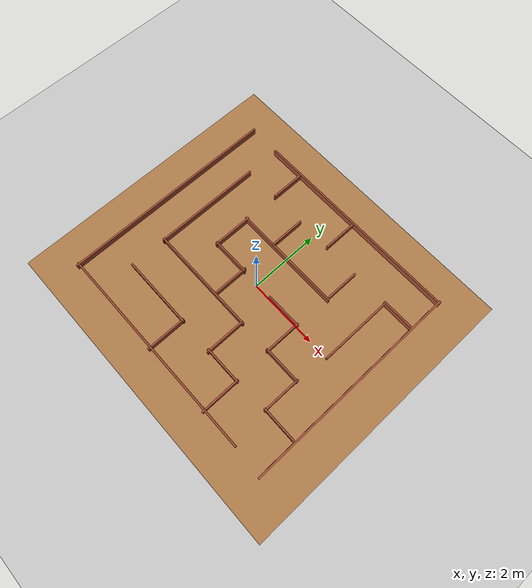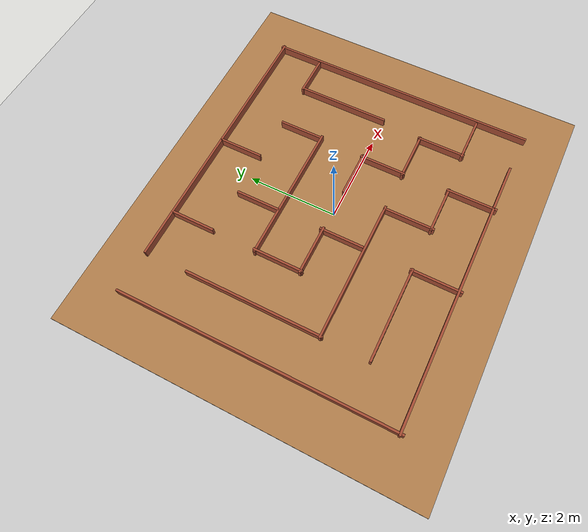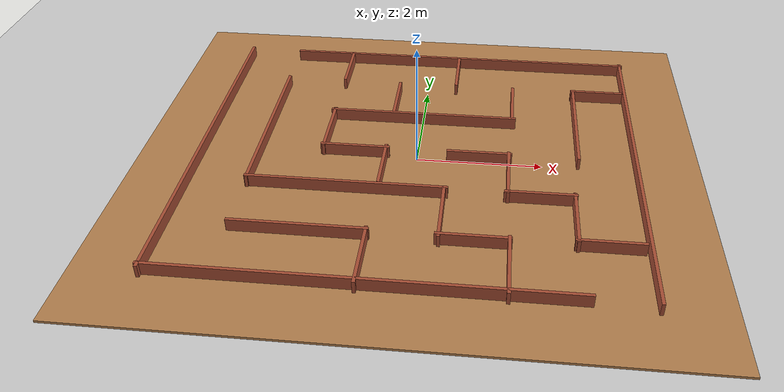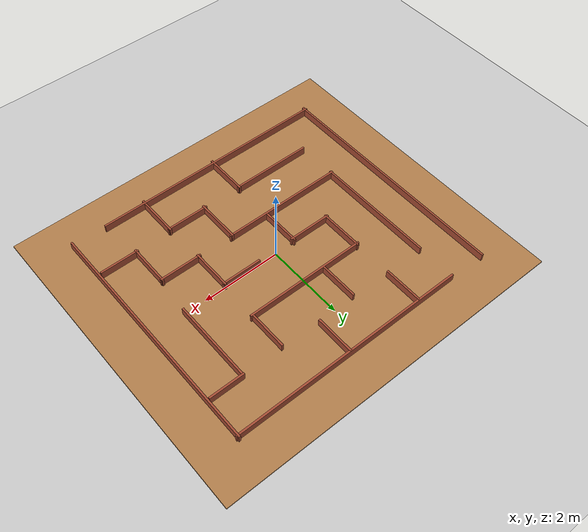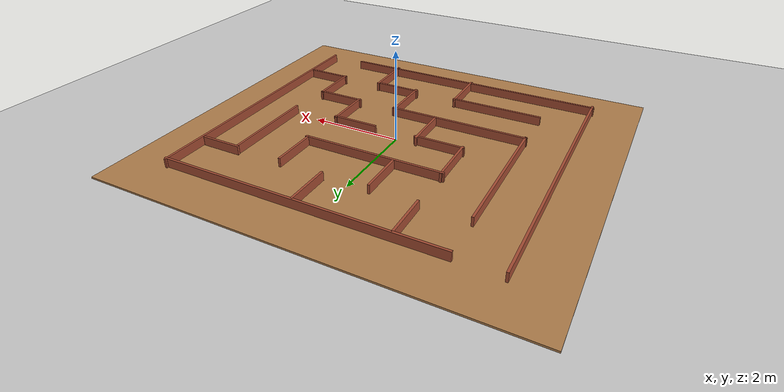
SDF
<sdf version="1.4">
  <world name="default">

    <scene>
      <ambient>0.4 0.4 0.4 1</ambient>
      <background>0.7 0.7 0.7 1</background>
      <shadows>true</shadows>
    </scene>

    <!-- A global light source -->
    <include>
      <uri>model://sun</uri>
    </include>

    <!-- A ground plane -->
    <include>
      <uri>model://ground_plane</uri>
    </include>

   <!-- A ground plane -->
    <include> -->
      <uri>model://maze1</uri>
      <pose> 0 0 0 0 0 0 </pose>
    </include> -->

    <physics type="ode">
      <real_time_update_rate>1000.0</real_time_update_rate>
      <max_step_size>0.001</max_step_size>
      <real_time_factor>1</real_time_factor>
      <ode>
        <solver>
          <type>quick</type>
          <iters>150</iters>
          <precon_iters>0</precon_iters>
          <sor>1.400000</sor>
          <use_dynamic_moi_rescaling>1</use_dynamic_moi_rescaling>
        </solver>
        <constraints>
          <cfm>0.00001</cfm>
          <erp>0.2</erp>
          <contact_max_correcting_vel>2000.000000</contact_max_correcting_vel>
          <contact_surface_layer>0.01000</contact_surface_layer>
        </constraints>
      </ode>
    </physics>
  </world>

</sdf>

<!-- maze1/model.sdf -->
<sdf version='1.6'>
  <model name='maze1'>
    <pose frame=''>0.314901 -0.175 0 0 -0 0</pose>
    <link name='ground_link'>
      <collision name='ground_collision'>
        <geometry>
          <box>
            <size>9 8 0.05</size>
          </box>
        </geometry>
        <surface>
          <friction>
            <ode>
              <mu>100</mu>
              <mu2>50</mu2>
            </ode>
          </friction>
        </surface>
      </collision>
      <visual name='ground_visual'>
        <geometry>
          <box>
            <size>9 8 0.05</size>
          </box>
        </geometry>
        <material>
          <script>
            <uri>file://media/materials/scripts/gazebo.material</uri>
            <name>Gazebo/Wood</name>
          </script>
        </material>
      </visual>
    </link>
    <link name='Wall_11'>
      <collision name='Wall_11_Collision'>
        <geometry>
          <box>
            <size>3.08 0.05 0.25</size>
          </box>
        </geometry>
        <pose frame=''>0 0 0.1 0 -0 0</pose>
      </collision>
      <visual name='Wall_11_Visual'>
        <pose frame=''>0 0 0.1 0 -0 0</pose>
        <geometry>
          <box>
            <size>3.08 0.05 0.25</size>
          </box>
        </geometry>
        <material>
          <script>
            <uri>file://media/materials/scripts/gazebo.material</uri>
            <name>Gazebo/Bricks</name>
          </script>
          <ambient>1 1 1 1</ambient>
        </material>
        <meta>
          <layer>0</layer>
        </meta>
      </visual>
      <pose frame=''>-2.5298 0.54 0 0 -0 -1.5708</pose>
    </link>
    <link name='Wall_13'>
      <collision name='Wall_13_Collision'>
        <geometry>
          <box>
            <size>3.14 0.05 0.25</size>
          </box>
        </geometry>
        <pose frame=''>0 0 0.1 0 -0 0</pose>
      </collision>
      <visual name='Wall_13_Visual'>
        <pose frame=''>0 0 0.1 0 -0 0</pose>
        <geometry>
          <box>
            <size>3.14 0.05 0.25</size>
          </box>
        </geometry>
        <material>
          <script>
            <uri>file://media/materials/scripts/gazebo.material</uri>
            <name>Gazebo/Bricks</name>
          </script>
          <ambient>1 1 1 1</ambient>
        </material>
        <meta>
          <layer>0</layer>
        </meta>
      </visual>
      <pose frame=''>-1 -0.95 0 0 -0 0</pose>
    </link>
    <link name='Wall_15'>
      <collision name='Wall_15_Collision'>
        <geometry>
          <box>
            <size>2.08 0.05 0.25</size>
          </box>
        </geometry>
        <pose frame=''>0 0 0.1 0 -0 0</pose>
      </collision>
      <visual name='Wall_15_Visual'>
        <pose frame=''>0 0 0.1 0 -0 0</pose>
        <geometry>
          <box>
            <size>2.08 0.05 0.25</size>
          </box>
        </geometry>
        <material>
          <script>
            <uri>file://media/materials/scripts/gazebo.material</uri>
            <name>Gazebo/Bricks</name>
          </script>
          <ambient>1 1 1 1</ambient>
        </material>
        <meta>
          <layer>0</layer>
        </meta>
      </visual>
      <pose frame=''>-1.518 -2.010 0 0 -0 0</pose>
    </link>
    <link name='Wall_17'>
      <collision name='Wall_17_Collision'>
        <geometry>
          <box>
            <size>1.14 0.05 0.25</size>
          </box>
        </geometry>
        <pose frame=''>0 0 0.1 0 -0 0</pose>
      </collision>
      <visual name='Wall_17_Visual'>
        <pose frame=''>0 0 0.1 0 -0 0</pose>
        <geometry>
          <box>
            <size>1.14 0.05 0.25</size>
          </box>
        </geometry>
        <material>
          <script>
            <uri>file://media/materials/scripts/gazebo.material</uri>
            <name>Gazebo/Bricks</name>
          </script>
          <ambient>1 1 1 1</ambient>
        </material>
        <meta>
          <layer>0</layer>
        </meta>
      </visual>
      <pose frame=''>-0.52 -2.53 0 0 -0 -1.5708</pose>
    </link>
    <link name='Wall_19'>
      <collision name='Wall_19_Collision'>
        <geometry>
          <box>
            <size>3.14 0.05 0.25</size>
          </box>
        </geometry>
        <pose frame=''>0 0 0.1 0 -0 0</pose>
      </collision>
      <visual name='Wall_19_Visual'>
        <pose frame=''>0 0 0.1 0 -0 0</pose>
        <geometry>
          <box>
            <size>3.14 0.05 0.25</size>
          </box>
        </geometry>
        <material>
          <script>
            <uri>file://media/materials/scripts/gazebo.material</uri>
            <name>Gazebo/Bricks</name>
          </script>
          <ambient>1 1 1 1</ambient>
        </material>
        <meta>
          <layer>0</layer>
        </meta>
      </visual>
      <pose frame=''>0 1.05 0 0 -0 0</pose>
    </link>
    <link name='Wall_2'>
      <collision name='Wall_2_Collision'>
        <geometry>
          <box>
            <size>6.2 0.05 0.25</size>
          </box>
        </geometry>
        <pose frame=''>0 0 0.1 0 -0 0</pose>
      </collision>
      <visual name='Wall_2_Visual'>
        <pose frame=''>0 0 0.1 0 -0 0</pose>
        <geometry>
          <box>
            <size>6.2 0.05 0.25</size>
          </box>
        </geometry>
        <material>
          <script>
            <uri>file://media/materials/scripts/gazebo.material</uri>
            <name>Gazebo/Bricks</name>
          </script>
          <ambient>1 1 1 1</ambient>
        </material>
        <meta>
          <layer>0</layer>
        </meta>
      </visual>
      <pose frame=''>-3.4698 -0 0 0 -0 -1.5708</pose>
    </link>
    <link name='Wall_23'>
      <collision name='Wall_23_Collision'>
        <geometry>
          <box>
            <size>1.14 0.05 0.25</size>
          </box>
        </geometry>
        <pose frame=''>0 0 0.1 0 -0 0</pose>
      </collision>
      <visual name='Wall_23_Visual'>
        <pose frame=''>0 0 0.1 0 -0 0</pose>
        <geometry>
          <box>
            <size>1.14 0.05 0.25</size>
          </box>
        </geometry>
        <material>
          <script>
            <uri>file://media/materials/scripts/gazebo.material</uri>
            <name>Gazebo/Bricks</name>
          </script>
          <ambient>1 1 1 1</ambient>
        </material>
        <meta>
          <layer>0</layer>
        </meta>
      </visual>
      <pose frame=''>-1.5098 0.53 0 0 -0 1.5708</pose>
    </link>
    <link name='Wall_25'>
      <collision name='Wall_25_Collision'>
        <geometry>
          <box>
            <size>1.12 0.05 0.25</size>
          </box>
        </geometry>
        <pose frame=''>0 0 0.1 0 -0 0</pose>
      </collision>
      <visual name='Wall_25_Visual'>
        <pose frame=''>0 0 0.1 0 -0 0</pose>
        <geometry>
          <box>
            <size>1.12 0.05 0.25</size>
          </box>
        </geometry>
        <material>
          <script>
            <uri>file://media/materials/scripts/gazebo.material</uri>
            <name>Gazebo/Bricks</name>
          </script>
          <ambient>1 1 1 1</ambient>
        </material>
        <meta>
          <layer>0</layer>
        </meta>
      </visual>
      <pose frame=''>-1 0.01 0 0 -0 3.14159</pose>
    </link>
    <link name='Wall_27'>
      <collision name='Wall_27_Collision'>
        <geometry>
          <box>
            <size>1 0.05 0.25</size>
          </box>
        </geometry>
        <pose frame=''>0 0 0.1 0 -0 0</pose>
      </collision>
      <visual name='Wall_27_Visual'>
        <pose frame=''>0 0 0.1 0 -0 0</pose>
        <geometry>
          <box>
            <size>1 0.05 0.25</size>
          </box>
        </geometry>
        <material>
          <script>
            <uri>file://media/materials/scripts/gazebo.material</uri>
            <name>Gazebo/Bricks</name>
          </script>
          <ambient>1 1 1 1</ambient>
        </material>
        <meta>
          <layer>0</layer>
        </meta>
      </visual>
      <pose frame=''>-0.5 -0.42 0 0 -0 -1.5708</pose>
    </link>
    <link name='Wall_29'>
      <collision name='Wall_29_Collision'>
        <geometry>
          <box>
            <size>1 0.05 0.25</size>
          </box>
        </geometry>
        <pose frame=''>0 0 0.1 0 -0 0</pose>
      </collision>
      <visual name='Wall_29_Visual'>
        <pose frame=''>0 0 0.1 0 -0 0</pose>
        <geometry>
          <box>
            <size>1 0.05 0.25</size>
          </box>
        </geometry>
        <material>
          <script>
            <uri>file://media/materials/scripts/gazebo.material</uri>
            <name>Gazebo/Bricks</name>
          </script>
          <ambient>1 1 1 1</ambient>
        </material>
        <meta>
          <layer>0</layer>
        </meta>
      </visual>
      <pose frame=''>-1.51 2.55 0 0 -0 1.5708</pose>
    </link>
    <link name='Wall_31'>
      <collision name='Wall_31_Collision'>
        <geometry>
          <box>
            <size>1 0.05 0.25</size>
          </box>
        </geometry>
        <pose frame=''>0 0 0.1 0 -0 0</pose>
      </collision>
      <visual name='Wall_31_Visual'>
        <pose frame=''>0 0 0.1 0 -0 0</pose>
        <geometry>
          <box>
            <size>1 0.05 0.25</size>
          </box>
        </geometry>
        <material>
          <script>
            <uri>file://media/materials/scripts/gazebo.material</uri>
            <name>Gazebo/Bricks</name>
          </script>
          <ambient>1 1 1 1</ambient>
        </material>
        <meta>
          <layer>0</layer>
        </meta>
      </visual>
      <pose frame=''>0.5 2.55 0 0 -0 1.5708</pose>
    </link>
    <link name='Wall_33'>
      <collision name='Wall_33_Collision'>
        <geometry>
          <box>
            <size>1 0.05 0.25</size>
          </box>
        </geometry>
        <pose frame=''>0 0 0.1 0 -0 0</pose>
      </collision>
      <visual name='Wall_33_Visual'>
        <pose frame=''>0 0 0.1 0 -0 0</pose>
        <geometry>
          <box>
            <size>1 0.05 0.25</size>
          </box>
        </geometry>
        <material>
          <script>
            <uri>file://media/materials/scripts/gazebo.material</uri>
            <name>Gazebo/Bricks</name>
          </script>
          <ambient>1 1 1 1</ambient>
        </material>
        <meta>
          <layer>0</layer>
        </meta>
      </visual>
      <pose frame=''>-0.5 1.55 0 0 -0 -1.5708</pose>
    </link>
    <link name='Wall_35'>
      <collision name='Wall_35_Collision'>
        <geometry>
          <box>
            <size>1 0.05 0.25</size>
          </box>
        </geometry>
        <pose frame=''>0 0 0.1 0 -0 0</pose>
      </collision>
      <visual name='Wall_35_Visual'>
        <pose frame=''>0 0 0.1 0 -0 0</pose>
        <geometry>
          <box>
            <size>1 0.05 0.25</size>
          </box>
        </geometry>
        <material>
          <script>
            <uri>file://media/materials/scripts/gazebo.material</uri>
            <name>Gazebo/Bricks</name>
          </script>
          <ambient>1 1 1 1</ambient>
        </material>
        <meta>
          <layer>0</layer>
        </meta>
      </visual>
      <pose frame=''>1.51 1.55 0 0 -0 -1.5708</pose>
    </link>
    <link name='Wall_37'>
      <collision name='Wall_37_Collision'>
        <geometry>
          <box>
            <size>0.9 0.05 0.25</size>
          </box>
        </geometry>
        <pose frame=''>0 0 0.1 0 -0 0</pose>
      </collision>
      <visual name='Wall_37_Visual'>
        <pose frame=''>0 0 0.1 0 -0 0</pose>
        <geometry>
          <box>
            <size>0.9 0.05 0.25</size>
          </box>
        </geometry>
        <material>
          <script>
            <uri>file://media/materials/scripts/gazebo.material</uri>
            <name>Gazebo/Bricks</name>
          </script>
          <ambient>1 1 1 1</ambient>
        </material>
        <meta>
          <layer>0</layer>
        </meta>
      </visual>
      <pose frame=''>2.98 2.05 0 0 -0 0</pose>
    </link>
    <link name='Wall_39'>
      <collision name='Wall_39_Collision'>
        <geometry>
          <box>
            <size>2.06 0.05 0.25</size>
          </box>
        </geometry>
        <pose frame=''>0 0 0.1 0 -0 0</pose>
      </collision>
      <visual name='Wall_39_Visual'>
        <pose frame=''>0 0 0.1 0 -0 0</pose>
        <geometry>
          <box>
            <size>2.06 0.05 0.25</size>
          </box>
        </geometry>
        <material>
          <script>
            <uri>file://media/materials/scripts/gazebo.material</uri>
            <name>Gazebo/Bricks</name>
          </script>
          <ambient>1 1 1 1</ambient>
        </material>
        <meta>
          <layer>0</layer>
        </meta>
      </visual>
      <pose frame=''>2.57 1 0 0 -0 1.5708</pose>
    </link>
    <link name='Wall_4'>
      <collision name='Wall_4_Collision'>
        <geometry>
          <box>
            <size>6.14 0.05 0.25</size>
          </box>
        </geometry>
        <pose frame=''>0 0 0.1 0 -0 0</pose>
      </collision>
      <visual name='Wall_4_Visual'>
        <pose frame=''>0 0 0.1 0 -0 0</pose>
        <geometry>
          <box>
            <size>6.14 0.05 0.25</size>
          </box>
        </geometry>
        <material>
          <script>
            <uri>file://media/materials/scripts/gazebo.material</uri>
            <name>Gazebo/Bricks</name>
          </script>
          <ambient>1 1 1 1</ambient>
        </material>
        <meta>
          <layer>0</layer>
        </meta>
      </visual>
      <pose frame=''>-0.45 -3.02 0 0 -0 0</pose>
    </link>
    <link name='Wall_41'>
      <collision name='Wall_41_Collision'>
        <geometry>
          <box>
            <size>1.04 0.05 0.25</size>
          </box>
        </geometry>
        <pose frame=''>0 0 0.1 0 -0 0</pose>
      </collision>
      <visual name='Wall_41_Visual'>
        <pose frame=''>0 0 0.1 0 -0 0</pose>
        <geometry>
          <box>
            <size>1.04 0.05 0.25</size>
          </box>
        </geometry>
        <material>
          <script>
            <uri>file://media/materials/scripts/gazebo.material</uri>
            <name>Gazebo/Bricks</name>
          </script>
          <ambient>1 1 1 1</ambient>
        </material>
        <meta>
          <layer>0</layer>
        </meta>
      </visual>
      <pose frame=''>1 0.01 0 0 -0 0</pose>
    </link>
    <link name='Wall_43'>
      <collision name='Wall_43_Collision'>
        <geometry>
          <box>
            <size>1.16 0.05 0.25</size>
          </box>
        </geometry>
        <pose frame=''>0 0 0.1 0 -0 0</pose>
      </collision>
      <visual name='Wall_43_Visual'>
        <pose frame=''>0 0 0.1 0 -0 0</pose>
        <geometry>
          <box>
            <size>1.16 0.05 0.25</size>
          </box>
        </geometry>
        <material>
          <script>
            <uri>file://media/materials/scripts/gazebo.material</uri>
            <name>Gazebo/Bricks</name>
          </script>
          <ambient>1 1 1 1</ambient>
        </material>
        <meta>
          <layer>0</layer>
        </meta>
      </visual>
      <pose frame=''>0.51 -1.5 0 0 -0 1.5708</pose>
    </link>
    <link name='Wall_45'>
      <collision name='Wall_45_Collision'>
        <geometry>
          <box>
            <size>1.1 0.05 0.25</size>
          </box>
        </geometry>
        <pose frame=''>0 0 0.1 0 -0 0</pose>
      </collision>
      <visual name='Wall_45_Visual'>
        <pose frame=''>0 0 0.1 0 -0 0</pose>
        <geometry>
          <box>
            <size>1.1 0.05 0.25</size>
          </box>
        </geometry>
        <material>
          <script>
            <uri>file://media/materials/scripts/gazebo.material</uri>
            <name>Gazebo/Bricks</name>
          </script>
          <ambient>1 1 1 1</ambient>
        </material>
        <meta>
          <layer>0</layer>
        </meta>
      </visual>
      <pose frame=''>1 -2.01 0 0 -0 0</pose>
    </link>
    <link name='Wall_47'>
      <collision name='Wall_47_Collision'>
        <geometry>
          <box>
            <size>1.14 0.05 0.25</size>
          </box>
        </geometry>
        <pose frame=''>0 0 0.1 0 -0 0</pose>
      </collision>
      <visual name='Wall_47_Visual'>
        <pose frame=''>0 0 0.1 0 -0 0</pose>
        <geometry>
          <box>
            <size>1.14 0.05 0.25</size>
          </box>
        </geometry>
        <material>
          <script>
            <uri>file://media/materials/scripts/gazebo.material</uri>
            <name>Gazebo/Bricks</name>
          </script>
          <ambient>1 1 1 1</ambient>
        </material>
        <meta>
          <layer>0</layer>
        </meta>
      </visual>
      <pose frame=''>1.51 -2.53 0 0 -0 -1.5708</pose>
    </link>
    <link name='Wall_49'>
      <collision name='Wall_49_Collision'>
        <geometry>
          <box>
            <size>1.06 0.05 0.25</size>
          </box>
        </geometry>
        <pose frame=''>0 0 0.1 0 -0 0</pose>
      </collision>
      <visual name='Wall_49_Visual'>
        <pose frame=''>0 0 0.1 0 -0 0</pose>
        <geometry>
          <box>
            <size>1.06 0.05 0.25</size>
          </box>
        </geometry>
        <material>
          <script>
            <uri>file://media/materials/scripts/gazebo.material</uri>
            <name>Gazebo/Bricks</name>
          </script>
          <ambient>1 1 1 1</ambient>
        </material>
        <meta>
          <layer>0</layer>
        </meta>
      </visual>
      <pose frame=''>1.47 -0.47 0 0 -0 -1.5708</pose>
    </link>
    <link name='Wall_50'>
      <collision name='Wall_50_Collision'>
        <geometry>
          <box>
            <size>1.1 0.05 0.25</size>
          </box>
        </geometry>
        <pose frame=''>0 0 0.1 0 -0 0</pose>
      </collision>
      <visual name='Wall_50_Visual'>
        <pose frame=''>0 0 0.1 0 -0 0</pose>
        <geometry>
          <box>
            <size>1.1 0.05 0.25</size>
          </box>
        </geometry>
        <material>
          <script>
            <uri>file://media/materials/scripts/gazebo.material</uri>
            <name>Gazebo/Bricks</name>
          </script>
          <ambient>1 1 1 1</ambient>
        </material>
        <meta>
          <layer>0</layer>
        </meta>
      </visual>
      <pose frame=''>1.96 -0.95 0 0 -0 0</pose>
    </link>
    <link name='Wall_51'>
      <collision name='Wall_51_Collision'>
        <geometry>
          <box>
            <size>1.1 0.05 0.25</size>
          </box>
        </geometry>
        <pose frame=''>0 0 0.1 0 -0 0</pose>
      </collision>
      <visual name='Wall_51_Visual'>
        <pose frame=''>0 0 0.1 0 -0 0</pose>
        <geometry>
          <box>
            <size>1.1 0.05 0.25</size>
          </box>
        </geometry>
        <material>
          <script>
            <uri>file://media/materials/scripts/gazebo.material</uri>
            <name>Gazebo/Bricks</name>
          </script>
          <ambient>1 1 1 1</ambient>
        </material>
        <meta>
          <layer>0</layer>
        </meta>
      </visual>
      <pose frame=''>2.47 -1.45 0 0 -0 -1.5708</pose>
    </link>
    <link name='Wall_52'>
      <collision name='Wall_52_Collision'>
        <geometry>
          <box>
            <size>1 0.05 0.25</size>
          </box>
        </geometry>
        <pose frame=''>0 0 0.1 0 -0 0</pose>
      </collision>
      <visual name='Wall_52_Visual'>
        <pose frame=''>0 0 0.1 0 -0 0</pose>
        <geometry>
          <box>
            <size>1 0.05 0.25</size>
          </box>
        </geometry>
        <material>
          <script>
            <uri>file://media/materials/scripts/gazebo.material</uri>
            <name>Gazebo/Bricks</name>
          </script>
          <ambient>1 1 1 1</ambient>
        </material>
        <meta>
          <layer>0</layer>
        </meta>
      </visual>
      <pose frame=''>2.92 -1.95 0 0 -0 0</pose>
    </link>
    <link name='Wall_6'>
      <collision name='Wall_6_Collision'>
        <geometry>
          <box>
            <size>6.08 0.05 0.25</size>
          </box>
        </geometry>
        <pose frame=''>0 0 0.1 0 -0 0</pose>
      </collision>
      <visual name='Wall_6_Visual'>
        <pose frame=''>0 0 0.1 0 -0 0</pose>
        <geometry>
          <box>
            <size>6.08 0.05 0.25</size>
          </box>
        </geometry>
        <material>
          <script>
            <uri>file://media/materials/scripts/gazebo.material</uri>
            <name>Gazebo/Bricks</name>
          </script>
          <ambient>1 1 1 1</ambient>
        </material>
        <meta>
          <layer>0</layer>
        </meta>
      </visual>
      <pose frame=''>0.48 3.04 0 0 -0 0</pose>
    </link>
    <link name='Wall_8'>
      <collision name='Wall_8_Collision'>
        <geometry>
          <box>
            <size>6.2 0.05 0.25</size>
          </box>
        </geometry>
        <pose frame=''>0 0 0.1 0 -0 0</pose>
      </collision>
      <visual name='Wall_8_Visual'>
        <pose frame=''>0 0 0.1 0 -0 0</pose>
        <geometry>
          <box>
            <size>6.2 0.05 0.25</size>
          </box>
        </geometry>
        <material>
          <script>
            <uri>file://media/materials/scripts/gazebo.material</uri>
            <name>Gazebo/Bricks</name>
          </script>
          <ambient>1 1 1 1</ambient>
        </material>
        <meta>
          <layer>0</layer>
        </meta>
      </visual>
      <pose frame=''>3.47 -0 0 0 -0 -1.5708</pose>
    </link>
    <static>1</static>
  </model>
</sdf>
